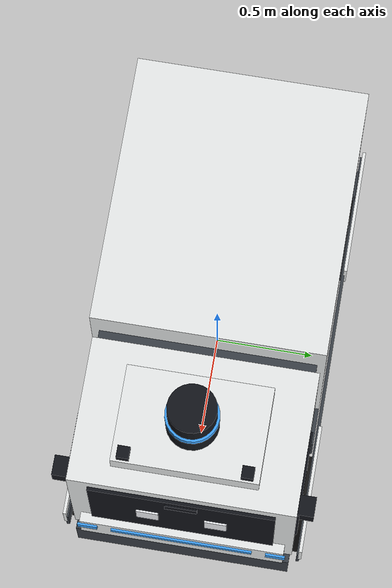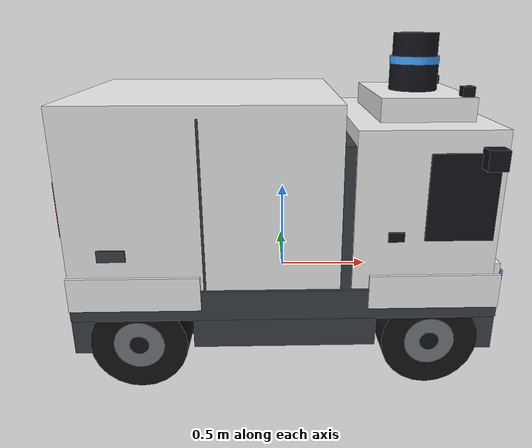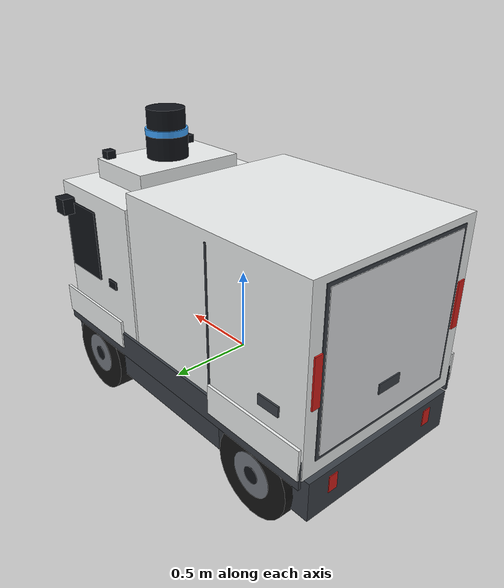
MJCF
<mujoco model="hakoniwa_car">
  <compiler angle="radian" autolimits="true"/>

  <worldbody>
    <body name="vehicle">
      <!-- Lower chassis (dark grey), between and outside the wheels -->
      <geom name="chassis_core_visual" type="box" pos="0 0 -0.12" size="1.06 0.38 0.13" rgba="0.23 0.25 0.28 1" contype="0" conaffinity="0" density="0" group="1"/>
      <geom name="front_bumper_visual" type="box" pos="1.04 0 -0.13" size="0.06 0.55 0.12" rgba="0.23 0.25 0.28 1" contype="0" conaffinity="0" density="0" group="1"/>
      <geom name="rear_bumper_visual" type="box" pos="-1.04 0 -0.13" size="0.06 0.55 0.12" rgba="0.23 0.25 0.28 1" contype="0" conaffinity="0" density="0" group="1"/>
      <geom name="side_skirt_left_visual" type="box" pos="0 0.53 -0.10" size="0.47 0.05 0.10" rgba="0.23 0.25 0.28 1" contype="0" conaffinity="0" density="0" group="1"/>
      <geom name="side_skirt_right_visual" type="box" pos="0 -0.53 -0.10" size="0.47 0.05 0.10" rgba="0.23 0.25 0.28 1" contype="0" conaffinity="0" density="0" group="1"/>
      <!-- A dark band along the lower sides, the white arches over the wheels on it -->
      <geom name="side_band_left_visual" type="box" pos="0 0.594 0.05" size="1.08 0.008 0.08" rgba="0.23 0.25 0.28 1" contype="0" conaffinity="0" density="0" group="1"/>
      <geom name="side_band_right_visual" type="box" pos="0 -0.594 0.05" size="1.08 0.008 0.08" rgba="0.23 0.25 0.28 1" contype="0" conaffinity="0" density="0" group="1"/>
      <!-- Wheel arches (white) -->
      <geom name="arch_front_left_visual" type="box" pos="0.75 0.603 0.12" size="0.33 0.008 0.09" rgba="0.93 0.94 0.94 1" contype="0" conaffinity="0" density="0" group="1"/>
      <geom name="arch_front_right_visual" type="box" pos="0.75 -0.603 0.12" size="0.33 0.008 0.09" rgba="0.93 0.94 0.94 1" contype="0" conaffinity="0" density="0" group="1"/>
      <geom name="arch_rear_left_visual" type="box" pos="-0.75 0.603 0.12" size="0.33 0.008 0.09" rgba="0.93 0.94 0.94 1" contype="0" conaffinity="0" density="0" group="1"/>
      <geom name="arch_rear_right_visual" type="box" pos="-0.75 -0.603 0.12" size="0.33 0.008 0.09" rgba="0.93 0.94 0.94 1" contype="0" conaffinity="0" density="0" group="1"/>
      <!-- Cab (front) -->
      <geom name="cab_visual" type="box" pos="0.70 0 0.47" size="0.36 0.56 0.46" rgba="0.93 0.94 0.94 1" contype="0" conaffinity="0" density="0" group="1"/>
      <geom name="cab_nose_visual" type="box" pos="1.07 0 0.12" size="0.04 0.52 0.11" rgba="0.93 0.94 0.94 1" contype="0" conaffinity="0" density="0" group="1"/>
      <geom name="windshield_visual" type="box" pos="1.065 0 0.55" size="0.012 0.46 0.30" rgba="0.07 0.08 0.10 1" contype="0" conaffinity="0" density="0" group="1"/>
      <geom name="side_window_left_visual" type="box" pos="0.86 0.565 0.60" size="0.17 0.006 0.22" rgba="0.07 0.08 0.10 1" contype="0" conaffinity="0" density="0" group="1"/>
      <geom name="side_window_right_visual" type="box" pos="0.86 -0.565 0.60" size="0.17 0.006 0.22" rgba="0.07 0.08 0.10 1" contype="0" conaffinity="0" density="0" group="1"/>
      <geom name="eye_left_visual" type="box" pos="1.08 0.17 0.52" size="0.006 0.055 0.065" rgba="0.97 0.98 1.00 1" contype="0" conaffinity="0" density="0" group="1"/>
      <geom name="eye_right_visual" type="box" pos="1.08 -0.17 0.52" size="0.006 0.055 0.065" rgba="0.97 0.98 1.00 1" contype="0" conaffinity="0" density="0" group="1"/>
      <geom name="front_camera_visual" type="box" pos="1.08 0 0.78" size="0.006 0.08 0.03" rgba="0.07 0.08 0.10 1" contype="0" conaffinity="0" density="0" group="1"/>
      <geom name="led_strip_visual" type="box" pos="1.115 0 0.17" size="0.006 0.36 0.018" rgba="0.25 0.65 1.00 1" contype="0" conaffinity="0" density="0" group="1"/>
      <geom name="headlight_left_visual" type="box" pos="1.115 0.48 0.17" size="0.006 0.05 0.025" rgba="0.25 0.65 1.00 1" contype="0" conaffinity="0" density="0" group="1"/>
      <geom name="headlight_right_visual" type="box" pos="1.115 -0.48 0.17" size="0.006 0.05 0.025" rgba="0.25 0.65 1.00 1" contype="0" conaffinity="0" density="0" group="1"/>
      <geom name="side_camera_left_visual" type="box" pos="0.98 0.60 0.80" size="0.05 0.04 0.05" rgba="0.07 0.08 0.10 1" contype="0" conaffinity="0" density="0" group="1"/>
      <geom name="side_camera_right_visual" type="box" pos="0.98 -0.60 0.80" size="0.05 0.04 0.05" rgba="0.07 0.08 0.10 1" contype="0" conaffinity="0" density="0" group="1"/>
      <geom name="side_marker_left_visual" type="box" pos="0.55 0.565 0.40" size="0.04 0.006 0.025" rgba="0.07 0.08 0.10 1" contype="0" conaffinity="0" density="0" group="1"/>
      <geom name="side_marker_right_visual" type="box" pos="0.55 -0.565 0.40" size="0.04 0.006 0.025" rgba="0.07 0.08 0.10 1" contype="0" conaffinity="0" density="0" group="1"/>
      <!-- Roof sensor pod and LiDAR -->
      <geom name="roof_pod_visual" type="box" pos="0.72 0 0.99" size="0.24 0.36 0.06" rgba="0.93 0.94 0.94 1" contype="0" conaffinity="0" density="0" group="1"/>
      <geom name="roof_sensor_left_visual" type="box" pos="0.92 0.30 1.07" size="0.03 0.03 0.03" rgba="0.07 0.08 0.10 1" contype="0" conaffinity="0" density="0" group="1"/>
      <geom name="roof_sensor_right_visual" type="box" pos="0.92 -0.30 1.07" size="0.03 0.03 0.03" rgba="0.07 0.08 0.10 1" contype="0" conaffinity="0" density="0" group="1"/>
      <geom name="lidar_base_visual" type="cylinder" pos="0.72 0 1.12" size="0.13 0.07" rgba="0.07 0.08 0.10 1" contype="0" conaffinity="0" density="0" group="1"/>
      <geom name="lidar_ring_visual" type="cylinder" pos="0.72 0 1.21" size="0.132 0.02" rgba="0.25 0.65 1.00 1" contype="0" conaffinity="0" density="0" group="1"/>
      <geom name="lidar_top_visual" type="cylinder" pos="0.72 0 1.29" size="0.12 0.06" rgba="0.07 0.08 0.10 1" contype="0" conaffinity="0" density="0" group="1"/>
      <!-- Between cab and cargo box -->
      <geom name="pillar_visual" type="box" pos="0.30 0 0.43" size="0.04 0.54 0.42" rgba="0.23 0.25 0.28 1" contype="0" conaffinity="0" density="0" group="1"/>
      <!-- Cargo box (rear) -->
      <geom name="cargo_visual" type="box" pos="-0.40 0 0.53" size="0.68 0.58 0.52" rgba="0.93 0.94 0.94 1" contype="0" conaffinity="0" density="0" group="1"/>
      <geom name="cargo_seam_left_visual" type="box" pos="-0.40 0.582 0.55" size="0.006 0.003 0.44" rgba="0.23 0.25 0.28 1" contype="0" conaffinity="0" density="0" group="1"/>
      <geom name="cargo_seam_right_visual" type="box" pos="-0.40 -0.582 0.55" size="0.006 0.003 0.44" rgba="0.23 0.25 0.28 1" contype="0" conaffinity="0" density="0" group="1"/>
      <geom name="cargo_handle_left_visual" type="box" pos="-0.85 0.585 0.32" size="0.07 0.005 0.03" rgba="0.23 0.25 0.28 1" contype="0" conaffinity="0" density="0" group="1"/>
      <geom name="cargo_handle_right_visual" type="box" pos="-0.85 -0.585 0.32" size="0.07 0.005 0.03" rgba="0.23 0.25 0.28 1" contype="0" conaffinity="0" density="0" group="1"/>
      <geom name="rear_door_frame_visual" type="box" pos="-1.082 0 0.55" size="0.003 0.50 0.46" rgba="0.23 0.25 0.28 1" contype="0" conaffinity="0" density="0" group="1"/>
      <geom name="rear_door_visual" type="box" pos="-1.086 0 0.55" size="0.003 0.48 0.44" rgba="0.88 0.89 0.90 1" contype="0" conaffinity="0" density="0" group="1"/>
      <geom name="rear_handle_visual" type="box" pos="-1.092 0 0.30" size="0.004 0.08 0.03" rgba="0.23 0.25 0.28 1" contype="0" conaffinity="0" density="0" group="1"/>
      <geom name="tail_light_left_visual" type="box" pos="-1.09 0.53 0.55" size="0.004 0.025 0.14" rgba="0.85 0.12 0.10 1" contype="0" conaffinity="0" density="0" group="1"/>
      <geom name="tail_light_right_visual" type="box" pos="-1.09 -0.53 0.55" size="0.004 0.025 0.14" rgba="0.85 0.12 0.10 1" contype="0" conaffinity="0" density="0" group="1"/>
      <geom name="rear_reflector_left_visual" type="box" pos="-1.10 0.38 -0.10" size="0.004 0.03 0.05" rgba="0.85 0.12 0.10 1" contype="0" conaffinity="0" density="0" group="1"/>
      <geom name="rear_reflector_right_visual" type="box" pos="-1.10 -0.38 -0.10" size="0.004 0.03 0.05" rgba="0.85 0.12 0.10 1" contype="0" conaffinity="0" density="0" group="1"/>

      <body name="front_left_steer" pos="0.75 0.5 -0.17">
        <inertial pos="0 0 0" mass="0.3" diaginertia="0.001 0.001 0.001"/>
        <joint name="front_left_steer_joint" type="hinge" axis="0 0 1"
               range="-0.80 0.80" damping="0.05" armature="0.01"/>
        <body name="front_left_wheel">
          <joint name="front_left_wheel_joint" type="hinge" axis="0 1 0"
                 damping="0.05" armature="0.01"/>
          <geom name="front_left_tire_visual" type="cylinder" pos="0 0 0" size="0.25 0.10" euler="1.57079632679 0 0" rgba="0.08 0.08 0.08 1" contype="0" conaffinity="0" density="0" group="1"/>
          <geom name="front_left_hub_visual" type="cylinder" pos="0 0 0" size="0.13 0.102" euler="1.57079632679 0 0" rgba="0.45 0.47 0.50 1" contype="0" conaffinity="0" density="0" group="1"/>
          <geom name="front_left_cap_visual" type="cylinder" pos="0 0 0" size="0.05 0.104" euler="1.57079632679 0 0" rgba="0.07 0.08 0.10 1" contype="0" conaffinity="0" density="0" group="1"/>
        </body>
      </body>

      <body name="front_right_steer" pos="0.75 -0.5 -0.17">
        <inertial pos="0 0 0" mass="0.3" diaginertia="0.001 0.001 0.001"/>
        <joint name="front_right_steer_joint" type="hinge" axis="0 0 1"
               range="-0.80 0.80" damping="0.05" armature="0.01"/>
        <body name="front_right_wheel">
          <joint name="front_right_wheel_joint" type="hinge" axis="0 1 0"
                 damping="0.05" armature="0.01"/>
          <geom name="front_right_tire_visual" type="cylinder" pos="0 0 0" size="0.25 0.10" euler="1.57079632679 0 0" rgba="0.08 0.08 0.08 1" contype="0" conaffinity="0" density="0" group="1"/>
          <geom name="front_right_hub_visual" type="cylinder" pos="0 0 0" size="0.13 0.102" euler="1.57079632679 0 0" rgba="0.45 0.47 0.50 1" contype="0" conaffinity="0" density="0" group="1"/>
          <geom name="front_right_cap_visual" type="cylinder" pos="0 0 0" size="0.05 0.104" euler="1.57079632679 0 0" rgba="0.07 0.08 0.10 1" contype="0" conaffinity="0" density="0" group="1"/>
        </body>
      </body>

      <body name="rear_left_wheel" pos="-0.75 0.5 -0.17">
        <joint name="rear_left_wheel_joint" type="hinge" axis="0 1 0"
               damping="0.05" armature="0.01"/>
        <geom name="rear_left_tire_visual" type="cylinder" pos="0 0 0" size="0.25 0.10" euler="1.57079632679 0 0" rgba="0.08 0.08 0.08 1" contype="0" conaffinity="0" density="0" group="1"/>
        <geom name="rear_left_hub_visual" type="cylinder" pos="0 0 0" size="0.13 0.102" euler="1.57079632679 0 0" rgba="0.45 0.47 0.50 1" contype="0" conaffinity="0" density="0" group="1"/>
        <geom name="rear_left_cap_visual" type="cylinder" pos="0 0 0" size="0.05 0.104" euler="1.57079632679 0 0" rgba="0.07 0.08 0.10 1" contype="0" conaffinity="0" density="0" group="1"/>
      </body>

      <body name="rear_right_wheel" pos="-0.75 -0.5 -0.17">
        <joint name="rear_right_wheel_joint" type="hinge" axis="0 1 0"
               damping="0.05" armature="0.01"/>
        <geom name="rear_right_tire_visual" type="cylinder" pos="0 0 0" size="0.25 0.10" euler="1.57079632679 0 0" rgba="0.08 0.08 0.08 1" contype="0" conaffinity="0" density="0" group="1"/>
        <geom name="rear_right_hub_visual" type="cylinder" pos="0 0 0" size="0.13 0.102" euler="1.57079632679 0 0" rgba="0.45 0.47 0.50 1" contype="0" conaffinity="0" density="0" group="1"/>
        <geom name="rear_right_cap_visual" type="cylinder" pos="0 0 0" size="0.05 0.104" euler="1.57079632679 0 0" rgba="0.07 0.08 0.10 1" contype="0" conaffinity="0" density="0" group="1"/>
      </body>
    </body>
  </worldbody>
</mujoco>
